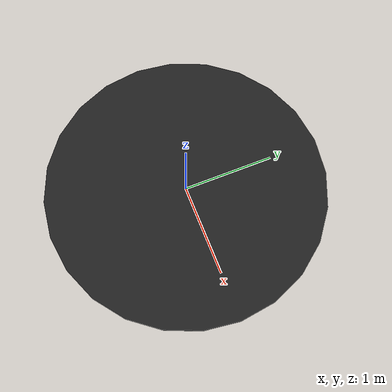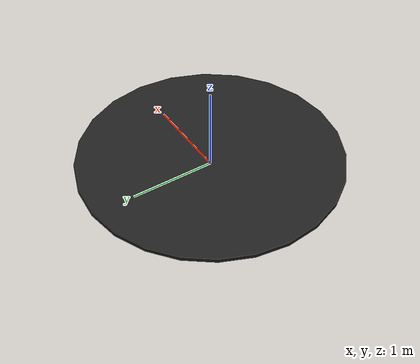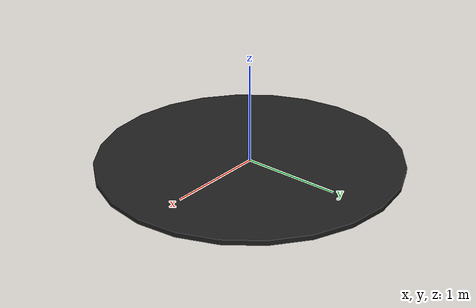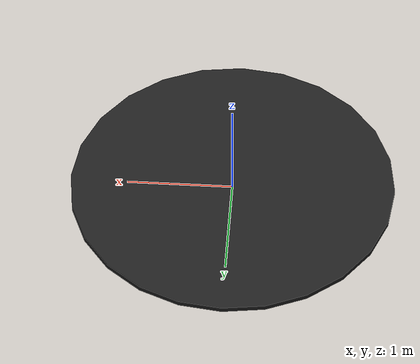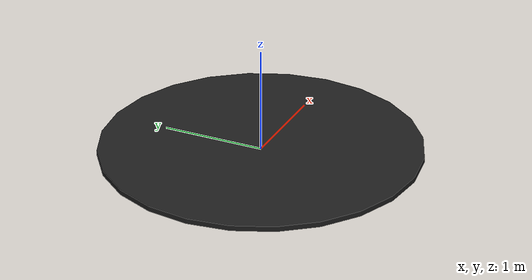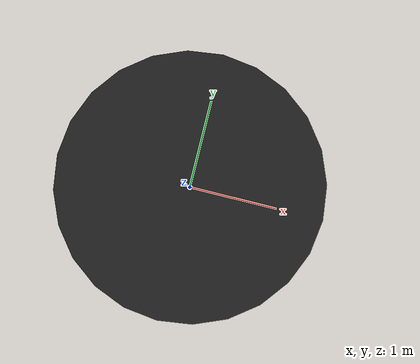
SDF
<sdf version='1.6'>
  <world name='default'>
    <!-- A global light source -->
    <include>
      <uri>model://sun</uri>
    </include>

    <!-- A ground plane -->

    <physics type="ode">
      <real_time_update_rate>1000.0</real_time_update_rate>
      <max_step_size>0.001</max_step_size>
      <real_time_factor>1</real_time_factor>
      <ode>
        <solver>
          <type>quick</type>
          <iters>150</iters>
          <precon_iters>0</precon_iters>
          <sor>1.400000</sor>
          <use_dynamic_moi_rescaling>1</use_dynamic_moi_rescaling>
        </solver>
        <constraints>
          <cfm>0.00001</cfm>
          <erp>0.2</erp>
          <contact_max_correcting_vel>2000.000000</contact_max_correcting_vel>
          <contact_surface_layer>0.01000</contact_surface_layer>
        </constraints>
      </ode>
    </physics>

    <!-- Load world -->
    <include>
      <uri>model://turtlebot3_dohyo</uri>
    </include>

    <scene>
      <ambient>0.4 0.4 0.4 1</ambient>
      <background>0.7 0.7 0.7 1</background>
      <shadows>true</shadows>
    </scene>

    <gui fullscreen='0'>
      <camera name='user_camera'>
        <pose>0.0 0.0 17.0 0 1.5708 0</pose>
        <view_controller>orbit</view_controller>
      </camera>
    </gui>
  </world>
</sdf>

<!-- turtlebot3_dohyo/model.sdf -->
<sdf version='1.6'>
  <model name='turtlebot3_dohyo'>

    <link name='base_link'>
      <pose frame=''>0 0 0.025 0 0 0</pose>

      <collision name='base_link_collision'>
        <pose frame=''>0 0 0 0 0 0</pose>
        <geometry>
          <cylinder>
            <radius>1.54</radius>
            <length>0.05</length>
          </cylinder>
        </geometry>
      </collision>

      <visual name='base_link_visual'>
        <pose frame=''>0 0 0 0 0 0</pose>
        <geometry>
          <cylinder>
            <radius>1.54</radius>
            <length>0.05</length>
          </cylinder>
        </geometry>
        <material>
          <script>
            <uri>file://media/materials/scripts/gazebo.material</uri>
            <name>Gazebo/FlatBlack</name>
          </script>
          <ambient>1 1 1 1</ambient>
        </material>
      </visual>
    </link>
    <static>1</static>
  </model>
</sdf>
